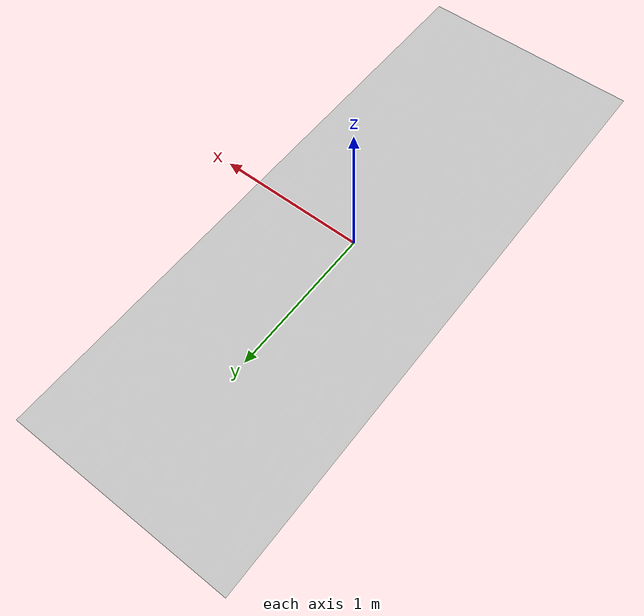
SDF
<?xml version="1.0"?>
<sdf version="1.6">
  <model name="terrain">
    <static>true</static> <!-- true si el modelo no se mueve -->
    <link name="base_link">
      <visual name="visual">
        <geometry>
          <mesh>
            <uri>model://terrain/meshes/terrain.stl</uri>
            <scale>1 1 1</scale>
          </mesh>
        </geometry>
        <material>
          <script>
            <uri>model://terrain/material/material.material</uri>
            <name>terrain_material</name>
          </script>
        </material>
      </visual>
      <collision name="collision">
        <geometry>
          <mesh>
            <uri>model://terrain/meshes/terrain.stl</uri>
            <scale>1 1 1</scale>
          </mesh>
        </geometry>
      </collision>
    </link>
  </model>
</sdf>
